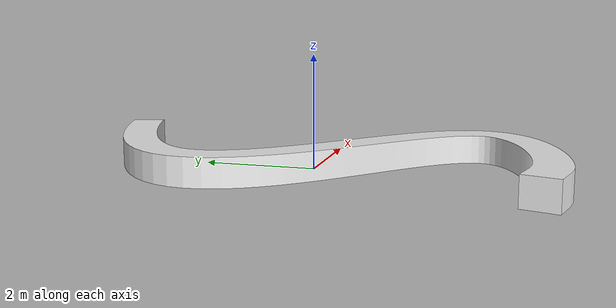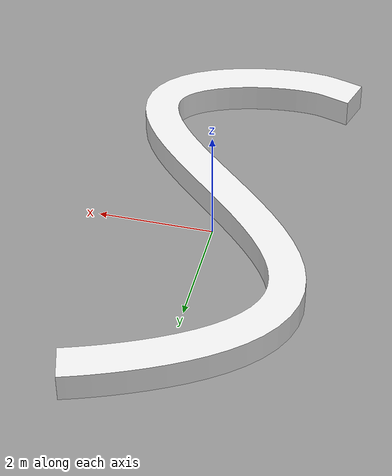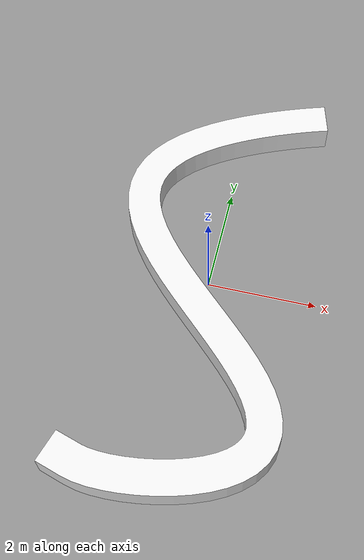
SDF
<?xml version="1.0"?>
<sdf version="1.5">
  <model name="bridge_of_doom">
    <static>true</static>
    <link name="link">
      <collision name="collision">
	<geometry>
	  <mesh>
            <uri>model://bod/meshes/bridge_of_doom.dae</uri>
          </mesh>
        </geometry>
	<surface>
	  <contact>
	    <collide_bitmask>0xffff</collide_bitmask>
          </contact>
	  <friction>
  	    <ode>
              <mu>0.01</mu>
	      <mu2>0.02</mu2>
	      <slip1>0.4</slip1>
	      <slip2>0.4</slip2>
            </ode>
          </friction>
          </surface>
        </collision>
      <visual name="visual">
	<geometry>
	  <mesh>
            <uri>model://bod/meshes/bridge_of_doom.dae</uri>
          </mesh>
	</geometry>
        <material>
          <script>
            <uri>file://media/materials/scripts/gazebo.material</uri>
            <name>Gazebo/WhiteGlow</name>
          </script>
        </material>
	</visual>
      </link>
    </model>
</sdf>
